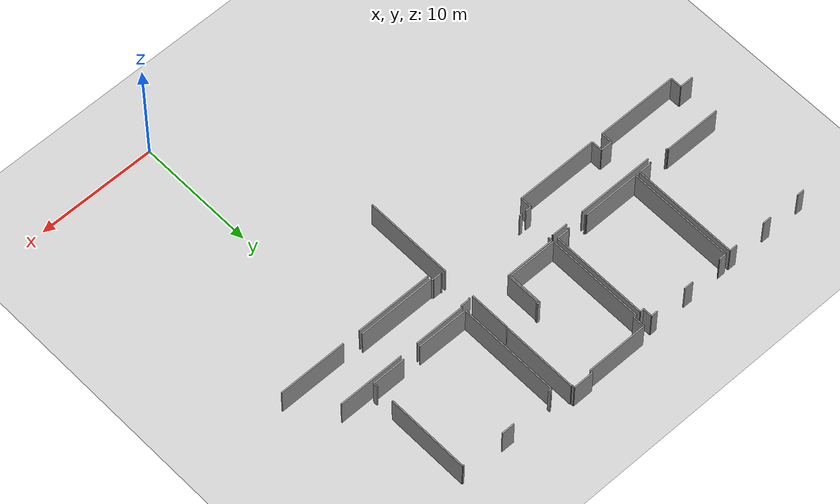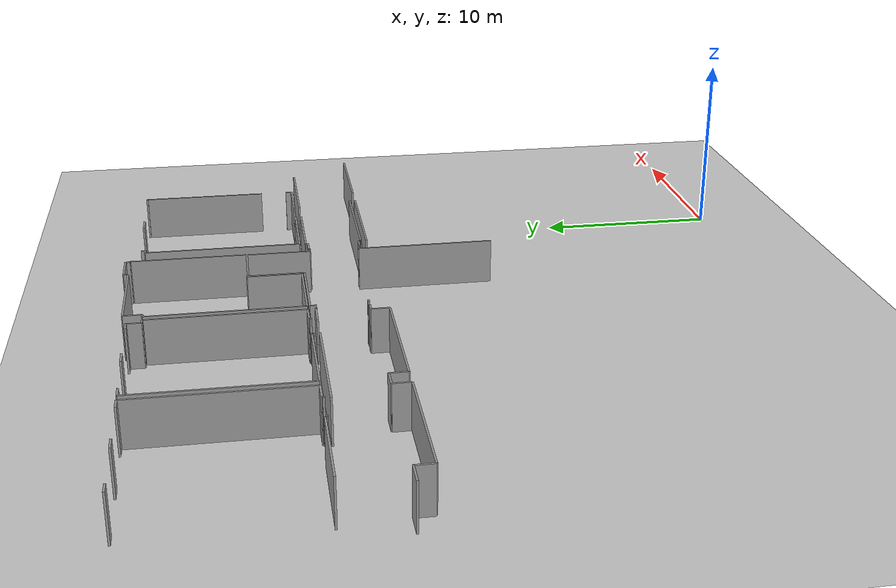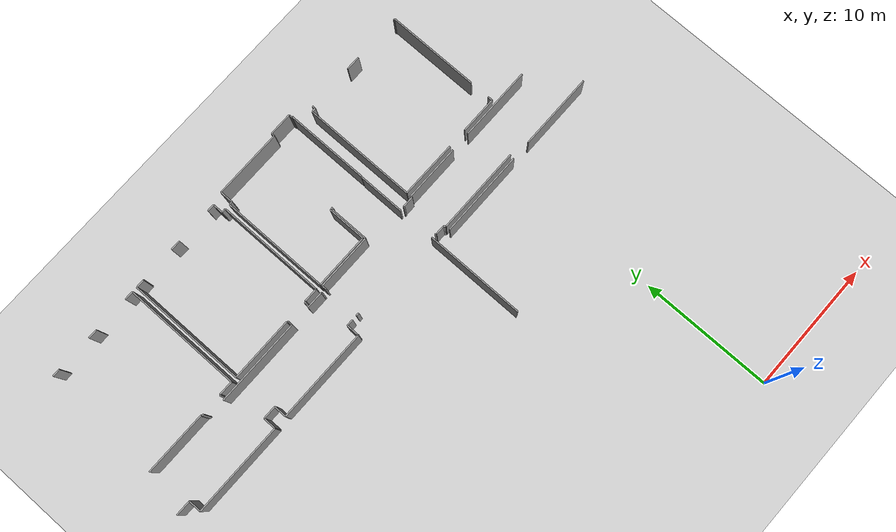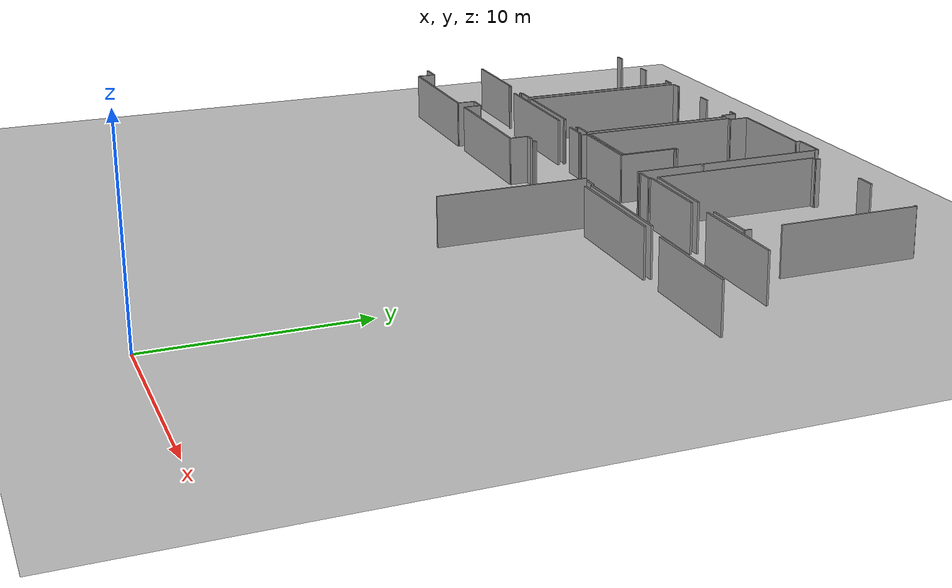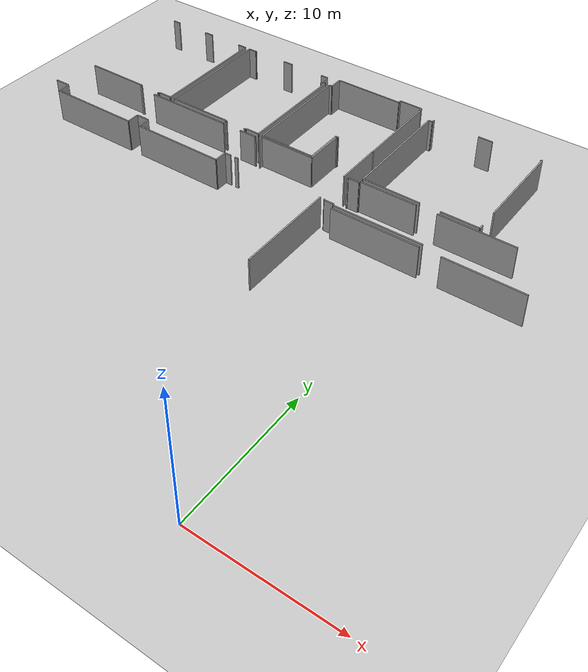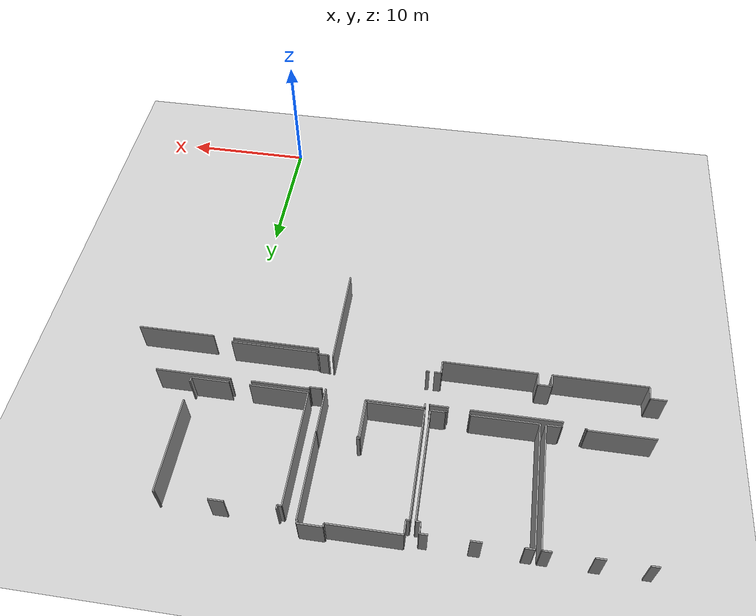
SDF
<sdf version="1.6">
 <world name="default">
  <model name="ground_plane">
   <static>1</static>
   <link name="link">
    <collision name="collision">
     <geometry><plane><normal>0 0 1</normal><size>100 100</size></plane></geometry>
     <surface><friction><ode><mu>100</mu><mu2>50</mu2></ode></friction></surface>
    </collision>
    <visual name="visual">
     <cast_shadows>0</cast_shadows>
     <geometry><plane><normal>0 0 1</normal><size>100 100</size></plane></geometry>
     <material>
      <script><uri>file://media/materials/scripts/gazebo.material</uri><name>Gazebo/Grey</name></script>
     </material>
    </visual>
   </link>
  </model>
  <model name="0510035739_A_40_1_102">
   <static>1</static>
   <link name="Wall_212">
    <collision name="Wall_212_Collision">
     <geometry><box><size>6.51525205273 0.1 2.5</size></box></geometry>
     <pose>3.25762602637 0 1.25 0 0 0</pose>
    </collision>
    <visual name="Wall_212_Visual">
     <pose>3.25762602637 0 1.25 0 0 0</pose>
     <geometry><box><size>6.51525205273 0.1 2.5</size></box></geometry>
     <material>
      <script><uri>file://media/materials/scripts/gazebo.material</uri><name>Gazebo/Grey</name></script>
      <ambient>1 1 1 1</ambient>
     </material>
    </visual>
    <pose>68.1760580152 -24.0087216448 0 0 0 0.0</pose>
   </link>
   <link name="Wall_213">
    <collision name="Wall_213_Collision">
     <geometry><box><size>1.33219048541 0.1 2.5</size></box></geometry>
     <pose>0.666095242704 0 1.25 0 0 0</pose>
    </collision>
    <visual name="Wall_213_Visual">
     <pose>0.666095242704 0 1.25 0 0 0</pose>
     <geometry><box><size>1.33219048541 0.1 2.5</size></box></geometry>
     <material>
      <script><uri>file://media/materials/scripts/gazebo.material</uri><name>Gazebo/Grey</name></script>
      <ambient>1 1 1 1</ambient>
     </material>
    </visual>
    <pose>76.1781161604 -24.0087216448 0 0 0 0.0</pose>
   </link>
   <link name="Wall_214">
    <collision name="Wall_214_Collision">
     <geometry><box><size>0.0649538381987 0.1 2.5</size></box></geometry>
     <pose>0.0324769190994 0 1.25 0 0 0</pose>
    </collision>
    <visual name="Wall_214_Visual">
     <pose>0.0324769190994 0 1.25 0 0 0</pose>
     <geometry><box><size>0.0649538381987 0.1 2.5</size></box></geometry>
     <material>
      <script><uri>file://media/materials/scripts/gazebo.material</uri><name>Gazebo/Grey</name></script>
      <ambient>1 1 1 1</ambient>
     </material>
    </visual>
    <pose>77.5103066458 -24.0087216448 0 0 0 -1.57079632679</pose>
   </link>
   <link name="Wall_215">
    <collision name="Wall_215_Collision">
     <geometry><box><size>0.5010360774 0.1 2.5</size></box></geometry>
     <pose>0.2505180387 0 1.25 0 0 0</pose>
    </collision>
    <visual name="Wall_215_Visual">
     <pose>0.2505180387 0 1.25 0 0 0</pose>
     <geometry><box><size>0.5010360774 0.1 2.5</size></box></geometry>
     <material>
      <script><uri>file://media/materials/scripts/gazebo.material</uri><name>Gazebo/Grey</name></script>
      <ambient>1 1 1 1</ambient>
     </material>
    </visual>
    <pose>77.5103066458 -26.7518113842 0 0 0 3.14159265359</pose>
   </link>
   <link name="Wall_216">
    <collision name="Wall_216_Collision">
     <geometry><box><size>0.971505642705 0.1 2.5</size></box></geometry>
     <pose>0.485752821353 0 1.25 0 0 0</pose>
    </collision>
    <visual name="Wall_216_Visual">
     <pose>0.485752821353 0 1.25 0 0 0</pose>
     <geometry><box><size>0.971505642705 0.1 2.5</size></box></geometry>
     <material>
      <script><uri>file://media/materials/scripts/gazebo.material</uri><name>Gazebo/Grey</name></script>
      <ambient>1 1 1 1</ambient>
     </material>
    </visual>
    <pose>77.0092705684 -26.7518113842 0 0 0 -1.57079632679</pose>
   </link>
   <link name="Wall_217">
    <collision name="Wall_217_Collision">
     <geometry><box><size>6.95057012913 0.1 2.5</size></box></geometry>
     <pose>3.47528506457 0 1.25 0 0 0</pose>
    </collision>
    <visual name="Wall_217_Visual">
     <pose>3.47528506457 0 1.25 0 0 0</pose>
     <geometry><box><size>6.95057012913 0.1 2.5</size></box></geometry>
     <material>
      <script><uri>file://media/materials/scripts/gazebo.material</uri><name>Gazebo/Grey</name></script>
      <ambient>1 1 1 1</ambient>
     </material>
    </visual>
    <pose>77.0092705684 -27.7233170269 0 0 0 3.14159265359</pose>
   </link>
   <link name="Wall_218">
    <collision name="Wall_218_Collision">
     <geometry><box><size>0.937882479403 0.1 2.5</size></box></geometry>
     <pose>0.468941239701 0 1.25 0 0 0</pose>
    </collision>
    <visual name="Wall_218_Visual">
     <pose>0.468941239701 0 1.25 0 0 0</pose>
     <geometry><box><size>0.937882479403 0.1 2.5</size></box></geometry>
     <material>
      <script><uri>file://media/materials/scripts/gazebo.material</uri><name>Gazebo/Grey</name></script>
      <ambient>1 1 1 1</ambient>
     </material>
    </visual>
    <pose>70.0587004393 -27.7233170269 0 0 0 1.57079632679</pose>
   </link>
   <link name="Wall_219">
    <collision name="Wall_219_Collision">
     <geometry><box><size>1.00487408507 0.1 2.5</size></box></geometry>
     <pose>0.502437042537 0 1.25 0 0 0</pose>
    </collision>
    <visual name="Wall_219_Visual">
     <pose>0.502437042537 0 1.25 0 0 0</pose>
     <geometry><box><size>1.00487408507 0.1 2.5</size></box></geometry>
     <material>
      <script><uri>file://media/materials/scripts/gazebo.material</uri><name>Gazebo/Grey</name></script>
      <ambient>1 1 1 1</ambient>
     </material>
    </visual>
    <pose>70.0587004393 -26.7854345475 0 0 0 3.14159265359</pose>
   </link>
   <link name="Wall_220">
    <collision name="Wall_220_Collision">
     <geometry><box><size>0.954694061054 0.1 2.5</size></box></geometry>
     <pose>0.477347030527 0 1.25 0 0 0</pose>
    </collision>
    <visual name="Wall_220_Visual">
     <pose>0.477347030527 0 1.25 0 0 0</pose>
     <geometry><box><size>0.954694061054 0.1 2.5</size></box></geometry>
     <material>
      <script><uri>file://media/materials/scripts/gazebo.material</uri><name>Gazebo/Grey</name></script>
      <ambient>1 1 1 1</ambient>
     </material>
    </visual>
    <pose>69.0538263542 -26.7854345475 0 0 0 -1.57079632679</pose>
   </link>
   <link name="Wall_221">
    <collision name="Wall_221_Collision">
     <geometry><box><size>6.91694696583 0.1 2.5</size></box></geometry>
     <pose>3.45847348291 0 1.25 0 0 0</pose>
    </collision>
    <visual name="Wall_221_Visual">
     <pose>3.45847348291 0 1.25 0 0 0</pose>
     <geometry><box><size>6.91694696583 0.1 2.5</size></box></geometry>
     <material>
      <script><uri>file://media/materials/scripts/gazebo.material</uri><name>Gazebo/Grey</name></script>
      <ambient>1 1 1 1</ambient>
     </material>
    </visual>
    <pose>69.0538263542 -27.7401286086 0 0 0 3.14159265359</pose>
   </link>
   <link name="Wall_222">
    <collision name="Wall_222_Collision">
     <geometry><box><size>0.954694061054 0.1 2.5</size></box></geometry>
     <pose>0.477347030527 0 1.25 0 0 0</pose>
    </collision>
    <visual name="Wall_222_Visual">
     <pose>0.477347030527 0 1.25 0 0 0</pose>
     <geometry><box><size>0.954694061054 0.1 2.5</size></box></geometry>
     <material>
      <script><uri>file://media/materials/scripts/gazebo.material</uri><name>Gazebo/Grey</name></script>
      <ambient>1 1 1 1</ambient>
     </material>
    </visual>
    <pose>62.1368793884 -27.7401286086 0 0 0 1.57079632679</pose>
   </link>
   <link name="Wall_223">
    <collision name="Wall_223_Collision">
     <geometry><box><size>1.15566887807 0.1 2.5</size></box></geometry>
     <pose>0.577834439034 0 1.25 0 0 0</pose>
    </collision>
    <visual name="Wall_223_Visual">
     <pose>0.577834439034 0 1.25 0 0 0</pose>
     <geometry><box><size>1.15566887807 0.1 2.5</size></box></geometry>
     <material>
      <script><uri>file://media/materials/scripts/gazebo.material</uri><name>Gazebo/Grey</name></script>
      <ambient>1 1 1 1</ambient>
     </material>
    </visual>
    <pose>62.1368793884 -26.7854345475 0 0 0 3.14159265359</pose>
   </link>
   <link name="Wall_349">
    <collision name="Wall_349_Collision">
     <geometry><box><size>0.593754497416 0.1 2.5</size></box></geometry>
     <pose>0.296877248708 0 1.25 0 0 0</pose>
    </collision>
    <visual name="Wall_349_Visual">
     <pose>0.296877248708 0 1.25 0 0 0</pose>
     <geometry><box><size>0.593754497416 0.1 2.5</size></box></geometry>
     <material>
      <script><uri>file://media/materials/scripts/gazebo.material</uri><name>Gazebo/Grey</name></script>
      <ambient>1 1 1 1</ambient>
     </material>
    </visual>
    <pose>62.041613759 -14.6709069211 0 0 0 0.0</pose>
   </link>
   <link name="Wall_350">
    <collision name="Wall_350_Collision">
     <geometry><box><size>0.711435568976 0.1 2.5</size></box></geometry>
     <pose>0.355717784488 0 1.25 0 0 0</pose>
    </collision>
    <visual name="Wall_350_Visual">
     <pose>0.355717784488 0 1.25 0 0 0</pose>
     <geometry><box><size>0.711435568976 0.1 2.5</size></box></geometry>
     <material>
      <script><uri>file://media/materials/scripts/gazebo.material</uri><name>Gazebo/Grey</name></script>
      <ambient>1 1 1 1</ambient>
     </material>
    </visual>
    <pose>65.3427970651 -14.6709069211 0 0 0 0.0</pose>
   </link>
   <link name="Wall_351">
    <collision name="Wall_351_Collision">
     <geometry><box><size>0.666604684573 0.1 2.5</size></box></geometry>
     <pose>0.333302342286 0 1.25 0 0 0</pose>
    </collision>
    <visual name="Wall_351_Visual">
     <pose>0.333302342286 0 1.25 0 0 0</pose>
     <geometry><box><size>0.666604684573 0.1 2.5</size></box></geometry>
     <material>
      <script><uri>file://media/materials/scripts/gazebo.material</uri><name>Gazebo/Grey</name></script>
      <ambient>1 1 1 1</ambient>
     </material>
    </visual>
    <pose>68.7155569537 -14.6709069211 0 0 0 0.0</pose>
   </link>
   <link name="Wall_352">
    <collision name="Wall_352_Collision">
     <geometry><box><size>8.93128011279 0.1 2.5</size></box></geometry>
     <pose>4.4656400564 0 1.25 0 0 0</pose>
    </collision>
    <visual name="Wall_352_Visual">
     <pose>4.4656400564 0 1.25 0 0 0</pose>
     <geometry><box><size>8.93128011279 0.1 2.5</size></box></geometry>
     <material>
      <script><uri>file://media/materials/scripts/gazebo.material</uri><name>Gazebo/Grey</name></script>
      <ambient>1 1 1 1</ambient>
     </material>
    </visual>
    <pose>69.3821616383 -14.6709069211 0 0 0 -1.57079632679</pose>
   </link>
   <link name="Wall_353">
    <collision name="Wall_353_Collision">
     <geometry><box><size>1.06091269058 0.1 2.5</size></box></geometry>
     <pose>0.53045634529 0 1.25 0 0 0</pose>
    </collision>
    <visual name="Wall_353_Visual">
     <pose>0.53045634529 0 1.25 0 0 0</pose>
     <geometry><box><size>1.06091269058 0.1 2.5</size></box></geometry>
     <material>
      <script><uri>file://media/materials/scripts/gazebo.material</uri><name>Gazebo/Grey</name></script>
      <ambient>1 1 1 1</ambient>
     </material>
    </visual>
    <pose>69.3821616383 -23.6021870339 0 0 0 3.14159265359</pose>
   </link>
   <link name="Wall_354">
    <collision name="Wall_354_Collision">
     <geometry><box><size>0.0797276523773 0.1 2.5</size></box></geometry>
     <pose>0.0398638261886 0 1.25 0 0 0</pose>
    </collision>
    <visual name="Wall_354_Visual">
     <pose>0.0398638261886 0 1.25 0 0 0</pose>
     <geometry><box><size>0.0797276523773 0.1 2.5</size></box></geometry>
     <material>
      <script><uri>file://media/materials/scripts/gazebo.material</uri><name>Gazebo/Grey</name></script>
      <ambient>1 1 1 1</ambient>
     </material>
    </visual>
    <pose>68.3212489477 -23.6021870339 0 0 0 -1.57079632679</pose>
   </link>
   <link name="Wall_355">
    <collision name="Wall_355_Collision">
     <geometry><box><size>0.101378931777 0.1 2.5</size></box></geometry>
     <pose>0.0506894658884 0 1.25 0 0 0</pose>
    </collision>
    <visual name="Wall_355_Visual">
     <pose>0.0506894658884 0 1.25 0 0 0</pose>
     <geometry><box><size>0.101378931777 0.1 2.5</size></box></geometry>
     <material>
      <script><uri>file://media/materials/scripts/gazebo.material</uri><name>Gazebo/Grey</name></script>
      <ambient>1 1 1 1</ambient>
     </material>
    </visual>
    <pose>68.3212489477 -23.6819146863 0 0 0 3.14159265359</pose>
   </link>
   <link name="Wall_356">
    <collision name="Wall_356_Collision">
     <geometry><box><size>0.143407885905 0.1 2.5</size></box></geometry>
     <pose>0.0717039429527 0 1.25 0 0 0</pose>
    </collision>
    <visual name="Wall_356_Visual">
     <pose>0.0717039429527 0 1.25 0 0 0</pose>
     <geometry><box><size>0.143407885905 0.1 2.5</size></box></geometry>
     <material>
      <script><uri>file://media/materials/scripts/gazebo.material</uri><name>Gazebo/Grey</name></script>
      <ambient>1 1 1 1</ambient>
     </material>
    </visual>
    <pose>66.6953652252 -23.6819146863 0 0 0 3.14159265359</pose>
   </link>
   <link name="Wall_357">
    <collision name="Wall_357_Collision">
     <geometry><box><size>0.0766710011679 0.1 2.5</size></box></geometry>
     <pose>0.038335500584 0 1.25 0 0 0</pose>
    </collision>
    <visual name="Wall_357_Visual">
     <pose>0.038335500584 0 1.25 0 0 0</pose>
     <geometry><box><size>0.0766710011679 0.1 2.5</size></box></geometry>
     <material>
      <script><uri>file://media/materials/scripts/gazebo.material</uri><name>Gazebo/Grey</name></script>
      <ambient>1 1 1 1</ambient>
     </material>
    </visual>
    <pose>66.5519573393 -23.6819146863 0 0 0 1.57079632679</pose>
   </link>
   <link name="Wall_358">
    <collision name="Wall_358_Collision">
     <geometry><box><size>4.77933312916 0.1 2.5</size></box></geometry>
     <pose>2.38966656458 0 1.25 0 0 0</pose>
    </collision>
    <visual name="Wall_358_Visual">
     <pose>2.38966656458 0 1.25 0 0 0</pose>
     <geometry><box><size>4.77933312916 0.1 2.5</size></box></geometry>
     <material>
      <script><uri>file://media/materials/scripts/gazebo.material</uri><name>Gazebo/Grey</name></script>
      <ambient>1 1 1 1</ambient>
     </material>
    </visual>
    <pose>66.5519573393 -23.6052436851 0 0 0 3.14026024485</pose>
   </link>
   <link name="Wall_359">
    <collision name="Wall_359_Collision">
     <geometry><box><size>8.94962002005 0.1 2.5</size></box></geometry>
     <pose>4.47481001002 0 1.25 0 0 0</pose>
    </collision>
    <visual name="Wall_359_Visual">
     <pose>4.47481001002 0 1.25 0 0 0</pose>
     <geometry><box><size>8.94962002005 0.1 2.5</size></box></geometry>
     <material>
      <script><uri>file://media/materials/scripts/gazebo.material</uri><name>Gazebo/Grey</name></script>
      <ambient>1 1 1 1</ambient>
     </material>
    </visual>
    <pose>69.7861490398 -23.6238383133 0 0 0 1.57079632679</pose>
   </link>
   <link name="Wall_360">
    <collision name="Wall_360_Collision">
     <geometry><box><size>0.634764567809 0.1 2.5</size></box></geometry>
     <pose>0.317382283904 0 1.25 0 0 0</pose>
    </collision>
    <visual name="Wall_360_Visual">
     <pose>0.317382283904 0 1.25 0 0 0</pose>
     <geometry><box><size>0.634764567809 0.1 2.5</size></box></geometry>
     <material>
      <script><uri>file://media/materials/scripts/gazebo.material</uri><name>Gazebo/Grey</name></script>
      <ambient>1 1 1 1</ambient>
     </material>
    </visual>
    <pose>69.7861490398 -14.6742182933 0 0 0 0.0</pose>
   </link>
   <link name="Wall_361">
    <collision name="Wall_361_Collision">
     <geometry><box><size>0.0433025587991 0.1 2.5</size></box></geometry>
     <pose>0.0216512793996 0 1.25 0 0 0</pose>
    </collision>
    <visual name="Wall_361_Visual">
     <pose>0.0216512793996 0 1.25 0 0 0</pose>
     <geometry><box><size>0.0433025587991 0.1 2.5</size></box></geometry>
     <material>
      <script><uri>file://media/materials/scripts/gazebo.material</uri><name>Gazebo/Grey</name></script>
      <ambient>1 1 1 1</ambient>
     </material>
    </visual>
    <pose>70.4209136076 -14.6742182933 0 0 0 1.57079632679</pose>
   </link>
   <link name="Wall_362">
    <collision name="Wall_362_Collision">
     <geometry><box><size>0.781993267726 0.1 2.5</size></box></geometry>
     <pose>0.390996633863 0 1.25 0 0 0</pose>
    </collision>
    <visual name="Wall_362_Visual">
     <pose>0.390996633863 0 1.25 0 0 0</pose>
     <geometry><box><size>0.781993267726 0.1 2.5</size></box></geometry>
     <material>
      <script><uri>file://media/materials/scripts/gazebo.material</uri><name>Gazebo/Grey</name></script>
      <ambient>1 1 1 1</ambient>
     </material>
    </visual>
    <pose>73.0929362064 -14.6309157345 0 0 0 0.0</pose>
   </link>
   <link name="Wall_363">
    <collision name="Wall_363_Collision">
     <geometry><box><size>0.557074682904 0.1 2.5</size></box></geometry>
     <pose>0.278537341452 0 1.25 0 0 0</pose>
    </collision>
    <visual name="Wall_363_Visual">
     <pose>0.278537341452 0 1.25 0 0 0</pose>
     <geometry><box><size>0.557074682904 0.1 2.5</size></box></geometry>
     <material>
      <script><uri>file://media/materials/scripts/gazebo.material</uri><name>Gazebo/Grey</name></script>
      <ambient>1 1 1 1</ambient>
     </material>
    </visual>
    <pose>76.5675844686 -14.6309157345 0 0 0 0.0</pose>
   </link>
   <link name="Wall_364">
    <collision name="Wall_364_Collision">
     <geometry><box><size>0.774351639702 0.1 2.5</size></box></geometry>
     <pose>0.387175819851 0 1.25 0 0 0</pose>
    </collision>
    <visual name="Wall_364_Visual">
     <pose>0.387175819851 0 1.25 0 0 0</pose>
     <geometry><box><size>0.774351639702 0.1 2.5</size></box></geometry>
     <material>
      <script><uri>file://media/materials/scripts/gazebo.material</uri><name>Gazebo/Grey</name></script>
      <ambient>1 1 1 1</ambient>
     </material>
    </visual>
    <pose>77.1246591516 -14.6309157345 0 0 0 -1.57079632679</pose>
   </link>
   <link name="Wall_365">
    <collision name="Wall_365_Collision">
     <geometry><box><size>0.319165330443 0.1 2.5</size></box></geometry>
     <pose>0.159582665222 0 1.25 0 0 0</pose>
    </collision>
    <visual name="Wall_365_Visual">
     <pose>0.159582665222 0 1.25 0 0 0</pose>
     <geometry><box><size>0.319165330443 0.1 2.5</size></box></geometry>
     <material>
      <script><uri>file://media/materials/scripts/gazebo.material</uri><name>Gazebo/Grey</name></script>
      <ambient>1 1 1 1</ambient>
     </material>
    </visual>
    <pose>77.1246591516 -15.4052673742 0 0 0 0.0</pose>
   </link>
   <link name="Wall_366">
    <collision name="Wall_366_Collision">
     <geometry><box><size>8.1936082876 0.1 2.5</size></box></geometry>
     <pose>4.0968041438 0 1.25 0 0 0</pose>
    </collision>
    <visual name="Wall_366_Visual">
     <pose>4.0968041438 0 1.25 0 0 0</pose>
     <geometry><box><size>8.1936082876 0.1 2.5</size></box></geometry>
     <material>
      <script><uri>file://media/materials/scripts/gazebo.material</uri><name>Gazebo/Grey</name></script>
      <ambient>1 1 1 1</ambient>
     </material>
    </visual>
    <pose>77.443824482 -15.4052673742 0 0 0 -1.57079632679</pose>
   </link>
   <link name="Wall_367">
    <collision name="Wall_367_Collision">
     <geometry><box><size>1.06575238833 0.1 2.5</size></box></geometry>
     <pose>0.532876194164 0 1.25 0 0 0</pose>
    </collision>
    <visual name="Wall_367_Visual">
     <pose>0.532876194164 0 1.25 0 0 0</pose>
     <geometry><box><size>1.06575238833 0.1 2.5</size></box></geometry>
     <material>
      <script><uri>file://media/materials/scripts/gazebo.material</uri><name>Gazebo/Grey</name></script>
      <ambient>1 1 1 1</ambient>
     </material>
    </visual>
    <pose>77.443824482 -23.5988756618 0 0 0 3.14159265359</pose>
   </link>
   <link name="Wall_368">
    <collision name="Wall_368_Collision">
     <geometry><box><size>0.0748879546291 0.1 2.5</size></box></geometry>
     <pose>0.0374439773146 0 1.25 0 0 0</pose>
    </collision>
    <visual name="Wall_368_Visual">
     <pose>0.0374439773146 0 1.25 0 0 0</pose>
     <geometry><box><size>0.0748879546291 0.1 2.5</size></box></geometry>
     <material>
      <script><uri>file://media/materials/scripts/gazebo.material</uri><name>Gazebo/Grey</name></script>
      <ambient>1 1 1 1</ambient>
     </material>
    </visual>
    <pose>76.3780720937 -23.5988756618 0 0 0 -1.57079632679</pose>
   </link>
   <link name="Wall_369">
    <collision name="Wall_369_Collision">
     <geometry><box><size>0.133219048541 0.1 2.5</size></box></geometry>
     <pose>0.0666095242704 0 1.25 0 0 0</pose>
    </collision>
    <visual name="Wall_369_Visual">
     <pose>0.0666095242704 0 1.25 0 0 0</pose>
     <geometry><box><size>0.133219048541 0.1 2.5</size></box></geometry>
     <material>
      <script><uri>file://media/materials/scripts/gazebo.material</uri><name>Gazebo/Grey</name></script>
      <ambient>1 1 1 1</ambient>
     </material>
    </visual>
    <pose>76.3780720937 -23.6737636164 0 0 0 3.14159265359</pose>
   </link>
   <link name="Wall_370">
    <collision name="Wall_370_Collision">
     <geometry><box><size>0.109530001668 0.1 2.5</size></box></geometry>
     <pose>0.0547650008342 0 1.25 0 0 0</pose>
    </collision>
    <visual name="Wall_370_Visual">
     <pose>0.0547650008342 0 1.25 0 0 0</pose>
     <geometry><box><size>0.109530001668 0.1 2.5</size></box></geometry>
     <material>
      <script><uri>file://media/materials/scripts/gazebo.material</uri><name>Gazebo/Grey</name></script>
      <ambient>1 1 1 1</ambient>
     </material>
    </visual>
    <pose>74.7129613474 -23.6737636164 0 0 0 3.14159265359</pose>
   </link>
   <link name="Wall_371">
    <collision name="Wall_371_Collision">
     <geometry><box><size>0.0613877451211 0.1 2.5</size></box></geometry>
     <pose>0.0306938725606 0 1.25 0 0 0</pose>
    </collision>
    <visual name="Wall_371_Visual">
     <pose>0.0306938725606 0 1.25 0 0 0</pose>
     <geometry><box><size>0.0613877451211 0.1 2.5</size></box></geometry>
     <material>
      <script><uri>file://media/materials/scripts/gazebo.material</uri><name>Gazebo/Grey</name></script>
      <ambient>1 1 1 1</ambient>
     </material>
    </visual>
    <pose>74.6034313457 -23.6737636164 0 0 0 1.57079632679</pose>
   </link>
   <link name="Wall_372">
    <collision name="Wall_372_Collision">
     <geometry><box><size>4.81729594302 0.1 2.5</size></box></geometry>
     <pose>2.40864797151 0 1.25 0 0 0</pose>
    </collision>
    <visual name="Wall_372_Visual">
     <pose>2.40864797151 0 1.25 0 0 0</pose>
     <geometry><box><size>4.81729594302 0.1 2.5</size></box></geometry>
     <material>
      <script><uri>file://media/materials/scripts/gazebo.material</uri><name>Gazebo/Grey</name></script>
      <ambient>1 1 1 1</ambient>
     </material>
    </visual>
    <pose>74.6034313457 -23.6123758713 0 0 0 -3.13921321646</pose>
   </link>
   <link name="Wall_373">
    <collision name="Wall_373_Collision">
     <geometry><box><size>8.1936082876 0.1 2.5</size></box></geometry>
     <pose>4.0968041438 0 1.25 0 0 0</pose>
    </collision>
    <visual name="Wall_373_Visual">
     <pose>4.0968041438 0 1.25 0 0 0</pose>
     <geometry><box><size>8.1936082876 0.1 2.5</size></box></geometry>
     <material>
      <script><uri>file://media/materials/scripts/gazebo.material</uri><name>Gazebo/Grey</name></script>
      <ambient>1 1 1 1</ambient>
     </material>
    </visual>
    <pose>77.8338022321 -23.6034606386 0 0 0 1.57079632679</pose>
   </link>
   <link name="Wall_374">
    <collision name="Wall_374_Collision">
     <geometry><box><size>0.240711282736 0.1 2.5</size></box></geometry>
     <pose>0.120355641368 0 1.25 0 0 0</pose>
    </collision>
    <visual name="Wall_374_Visual">
     <pose>0.120355641368 0 1.25 0 0 0</pose>
     <geometry><box><size>0.240711282736 0.1 2.5</size></box></geometry>
     <material>
      <script><uri>file://media/materials/scripts/gazebo.material</uri><name>Gazebo/Grey</name></script>
      <ambient>1 1 1 1</ambient>
     </material>
    </visual>
    <pose>77.8338022321 -15.409852351 0 0 0 0.0</pose>
   </link>
   <link name="Wall_375">
    <collision name="Wall_375_Collision">
     <geometry><box><size>1.00054382919 0.1 2.5</size></box></geometry>
     <pose>0.500271914597 0 1.25 0 0 0</pose>
    </collision>
    <visual name="Wall_375_Visual">
     <pose>0.500271914597 0 1.25 0 0 0</pose>
     <geometry><box><size>1.00054382919 0.1 2.5</size></box></geometry>
     <material>
      <script><uri>file://media/materials/scripts/gazebo.material</uri><name>Gazebo/Grey</name></script>
      <ambient>1 1 1 1</ambient>
     </material>
    </visual>
    <pose>78.0745135149 -15.409852351 0 0 0 1.57079632679</pose>
   </link>
   <link name="Wall_376">
    <collision name="Wall_376_Collision">
     <geometry><box><size>5.17949547425 0.1 2.5</size></box></geometry>
     <pose>2.58974773712 0 1.25 0 0 0</pose>
    </collision>
    <visual name="Wall_376_Visual">
     <pose>2.58974773712 0 1.25 0 0 0</pose>
     <geometry><box><size>5.17949547425 0.1 2.5</size></box></geometry>
     <material>
      <script><uri>file://media/materials/scripts/gazebo.material</uri><name>Gazebo/Grey</name></script>
      <ambient>1 1 1 1</ambient>
     </material>
    </visual>
    <pose>78.0745135149 -14.4093085218 0 0 0 0.0</pose>
   </link>
   <link name="Wall_377">
    <collision name="Wall_377_Collision">
     <geometry><box><size>0.240711282736 0.1 2.5</size></box></geometry>
     <pose>0.120355641368 0 1.25 0 0 0</pose>
    </collision>
    <visual name="Wall_377_Visual">
     <pose>0.120355641368 0 1.25 0 0 0</pose>
     <geometry><box><size>0.240711282736 0.1 2.5</size></box></geometry>
     <material>
      <script><uri>file://media/materials/scripts/gazebo.material</uri><name>Gazebo/Grey</name></script>
      <ambient>1 1 1 1</ambient>
     </material>
    </visual>
    <pose>83.2540089891 -14.4093085218 0 0 0 1.57079632679</pose>
   </link>
   <link name="Wall_378">
    <collision name="Wall_378_Collision">
     <geometry><box><size>1.73515900318 0.1 2.5</size></box></geometry>
     <pose>0.867579501588 0 1.25 0 0 0</pose>
    </collision>
    <visual name="Wall_378_Visual">
     <pose>0.867579501588 0 1.25 0 0 0</pose>
     <geometry><box><size>1.73515900318 0.1 2.5</size></box></geometry>
     <material>
      <script><uri>file://media/materials/scripts/gazebo.material</uri><name>Gazebo/Grey</name></script>
      <ambient>1 1 1 1</ambient>
     </material>
    </visual>
    <pose>83.2540089891 -14.1685972391 0 0 0 0.0</pose>
   </link>
   <link name="Wall_379">
    <collision name="Wall_379_Collision">
     <geometry><box><size>0.240711282736 0.1 2.5</size></box></geometry>
     <pose>0.120355641368 0 1.25 0 0 0</pose>
    </collision>
    <visual name="Wall_379_Visual">
     <pose>0.120355641368 0 1.25 0 0 0</pose>
     <geometry><box><size>0.240711282736 0.1 2.5</size></box></geometry>
     <material>
      <script><uri>file://media/materials/scripts/gazebo.material</uri><name>Gazebo/Grey</name></script>
      <ambient>1 1 1 1</ambient>
     </material>
    </visual>
    <pose>84.9891679923 -14.1685972391 0 0 0 -1.57079632679</pose>
   </link>
   <link name="Wall_380">
    <collision name="Wall_380_Collision">
     <geometry><box><size>0.0547650008342 0.1 2.5</size></box></geometry>
     <pose>0.0273825004171 0 1.25 0 0 0</pose>
    </collision>
    <visual name="Wall_380_Visual">
     <pose>0.0273825004171 0 1.25 0 0 0</pose>
     <geometry><box><size>0.0547650008342 0.1 2.5</size></box></geometry>
     <material>
      <script><uri>file://media/materials/scripts/gazebo.material</uri><name>Gazebo/Grey</name></script>
      <ambient>1 1 1 1</ambient>
     </material>
    </visual>
    <pose>84.9891679923 -14.4093085218 0 0 0 0.0</pose>
   </link>
   <link name="Wall_381">
    <collision name="Wall_381_Collision">
     <geometry><box><size>6.28523904923 0.1 2.5</size></box></geometry>
     <pose>3.14261952461 0 1.25 0 0 0</pose>
    </collision>
    <visual name="Wall_381_Visual">
     <pose>3.14261952461 0 1.25 0 0 0</pose>
     <geometry><box><size>6.28523904923 0.1 2.5</size></box></geometry>
     <material>
      <script><uri>file://media/materials/scripts/gazebo.material</uri><name>Gazebo/Grey</name></script>
      <ambient>1 1 1 1</ambient>
     </material>
    </visual>
    <pose>85.0439329931 -14.4093085218 0 0 0 -1.57079632679</pose>
   </link>
   <link name="Wall_382">
    <collision name="Wall_382_Collision">
     <geometry><box><size>0.217786398666 0.1 2.5</size></box></geometry>
     <pose>0.108893199333 0 1.25 0 0 0</pose>
    </collision>
    <visual name="Wall_382_Visual">
     <pose>0.108893199333 0 1.25 0 0 0</pose>
     <geometry><box><size>0.217786398666 0.1 2.5</size></box></geometry>
     <material>
      <script><uri>file://media/materials/scripts/gazebo.material</uri><name>Gazebo/Grey</name></script>
      <ambient>1 1 1 1</ambient>
     </material>
    </visual>
    <pose>82.2017568103 -20.694547571 0 0 0 3.14159265359</pose>
   </link>
   <link name="Wall_383">
    <collision name="Wall_383_Collision">
     <geometry><box><size>2.91477164905 0.1 2.5</size></box></geometry>
     <pose>1.45738582453 0 1.25 0 0 0</pose>
    </collision>
    <visual name="Wall_383_Visual">
     <pose>1.45738582453 0 1.25 0 0 0</pose>
     <geometry><box><size>2.91477164905 0.1 2.5</size></box></geometry>
     <material>
      <script><uri>file://media/materials/scripts/gazebo.material</uri><name>Gazebo/Grey</name></script>
      <ambient>1 1 1 1</ambient>
     </material>
    </visual>
    <pose>81.9839704116 -20.694547571 0 0 0 -1.57079632679</pose>
   </link>
   <link name="Wall_384">
    <collision name="Wall_384_Collision">
     <geometry><box><size>4.15017231463 0.1 2.5</size></box></geometry>
     <pose>2.07508615731 0 1.25 0 0 0</pose>
    </collision>
    <visual name="Wall_384_Visual">
     <pose>2.07508615731 0 1.25 0 0 0</pose>
     <geometry><box><size>4.15017231463 0.1 2.5</size></box></geometry>
     <material>
      <script><uri>file://media/materials/scripts/gazebo.material</uri><name>Gazebo/Grey</name></script>
      <ambient>1 1 1 1</ambient>
     </material>
    </visual>
    <pose>81.9839704116 -23.6093192201 0 0 0 3.14018100535</pose>
   </link>
   <link name="Wall_426">
    <collision name="Wall_426_Collision">
     <geometry><box><size>0.251154841035 0.1 2.5</size></box></geometry>
     <pose>0.125577420518 0 1.25 0 0 0</pose>
    </collision>
    <visual name="Wall_426_Visual">
     <pose>0.125577420518 0 1.25 0 0 0</pose>
     <geometry><box><size>0.251154841035 0.1 2.5</size></box></geometry>
     <material>
      <script><uri>file://media/materials/scripts/gazebo.material</uri><name>Gazebo/Grey</name></script>
      <ambient>1 1 1 1</ambient>
     </material>
    </visual>
    <pose>78.1147594224 -26.7518113842 0 0 0 3.14159265359</pose>
   </link>
   <link name="Wall_427">
    <collision name="Wall_427_Collision">
     <geometry><box><size>0.341835493579 0.1 2.5</size></box></geometry>
     <pose>0.17091774679 0 1.25 0 0 0</pose>
    </collision>
    <visual name="Wall_427_Visual">
     <pose>0.17091774679 0 1.25 0 0 0</pose>
     <geometry><box><size>0.341835493579 0.1 2.5</size></box></geometry>
     <material>
      <script><uri>file://media/materials/scripts/gazebo.material</uri><name>Gazebo/Grey</name></script>
      <ambient>1 1 1 1</ambient>
     </material>
    </visual>
    <pose>77.8636045814 -24.0846284831 0 0 0 1.57079632679</pose>
   </link>
   <link name="Wall_428">
    <collision name="Wall_428_Collision">
     <geometry><box><size>4.21282952929 0.1 2.5</size></box></geometry>
     <pose>2.10641476464 0 1.25 0 0 0</pose>
    </collision>
    <visual name="Wall_428_Visual">
     <pose>2.10641476464 0 1.25 0 0 0</pose>
     <geometry><box><size>4.21282952929 0.1 2.5</size></box></geometry>
     <material>
      <script><uri>file://media/materials/scripts/gazebo.material</uri><name>Gazebo/Grey</name></script>
      <ambient>1 1 1 1</ambient>
     </material>
    </visual>
    <pose>77.8636045814 -23.7427929896 0 0 0 0.0</pose>
   </link>
   <link name="Wall_429">
    <collision name="Wall_429_Collision">
     <geometry><box><size>2.93820597499 0.1 2.5</size></box></geometry>
     <pose>1.46910298749 0 1.25 0 0 0</pose>
    </collision>
    <visual name="Wall_429_Visual">
     <pose>1.46910298749 0 1.25 0 0 0</pose>
     <geometry><box><size>2.93820597499 0.1 2.5</size></box></geometry>
     <material>
      <script><uri>file://media/materials/scripts/gazebo.material</uri><name>Gazebo/Grey</name></script>
      <ambient>1 1 1 1</ambient>
     </material>
    </visual>
    <pose>82.0764341107 -23.7427929896 0 0 0 1.57079632679</pose>
   </link>
   <link name="Wall_430">
    <collision name="Wall_430_Collision">
     <geometry><box><size>0.120483001835 0.1 2.5</size></box></geometry>
     <pose>0.0602415009176 0 1.25 0 0 0</pose>
    </collision>
    <visual name="Wall_430_Visual">
     <pose>0.0602415009176 0 1.25 0 0 0</pose>
     <geometry><box><size>0.120483001835 0.1 2.5</size></box></geometry>
     <material>
      <script><uri>file://media/materials/scripts/gazebo.material</uri><name>Gazebo/Grey</name></script>
      <ambient>1 1 1 1</ambient>
     </material>
    </visual>
    <pose>82.0764341107 -20.8045870146 0 0 0 0.0</pose>
   </link>
   <link name="Wall_431">
    <collision name="Wall_431_Collision">
     <geometry><box><size>3.43007209876 0.1 2.5</size></box></geometry>
     <pose>1.71503604938 0 1.25 0 0 0</pose>
    </collision>
    <visual name="Wall_431_Visual">
     <pose>1.71503604938 0 1.25 0 0 0</pose>
     <geometry><box><size>3.43007209876 0.1 2.5</size></box></geometry>
     <material>
      <script><uri>file://media/materials/scripts/gazebo.material</uri><name>Gazebo/Grey</name></script>
      <ambient>1 1 1 1</ambient>
     </material>
    </visual>
    <pose>85.02126283 -20.8045870146 0 0 0 -1.57079632679</pose>
   </link>
   <link name="Wall_432">
    <collision name="Wall_432_Collision">
     <geometry><box><size>7.53566411479 0.1 2.5</size></box></geometry>
     <pose>3.76783205739 0 1.25 0 0 0</pose>
    </collision>
    <visual name="Wall_432_Visual">
     <pose>3.76783205739 0 1.25 0 0 0</pose>
     <geometry><box><size>7.53566411479 0.1 2.5</size></box></geometry>
     <material>
      <script><uri>file://media/materials/scripts/gazebo.material</uri><name>Gazebo/Grey</name></script>
      <ambient>1 1 1 1</ambient>
     </material>
    </visual>
    <pose>85.02126283 -26.9716355504 0 0 0 -1.57079632679</pose>
   </link>
   <link name="Wall_442">
    <collision name="Wall_442_Collision">
     <geometry><box><size>0.0433025587991 0.1 2.5</size></box></geometry>
     <pose>0.0216512793996 0 1.25 0 0 0</pose>
    </collision>
    <visual name="Wall_442_Visual">
     <pose>0.0216512793996 0 1.25 0 0 0</pose>
     <geometry><box><size>0.0433025587991 0.1 2.5</size></box></geometry>
     <material>
      <script><uri>file://media/materials/scripts/gazebo.material</uri><name>Gazebo/Grey</name></script>
      <ambient>1 1 1 1</ambient>
     </material>
    </visual>
    <pose>86.1914508013 -27.2080165772 0 0 0 1.57079632679</pose>
   </link>
   <link name="Wall_443">
    <collision name="Wall_443_Collision">
     <geometry><box><size>0.143918229438 0.1 2.5</size></box></geometry>
     <pose>0.0719591147189 0 1.25 0 0 0</pose>
    </collision>
    <visual name="Wall_443_Visual">
     <pose>0.0719591147189 0 1.25 0 0 0</pose>
     <geometry><box><size>0.143918229438 0.1 2.5</size></box></geometry>
     <material>
      <script><uri>file://media/materials/scripts/gazebo.material</uri><name>Gazebo/Grey</name></script>
      <ambient>1 1 1 1</ambient>
     </material>
    </visual>
    <pose>86.1914508013 -27.1647140184 0 0 0 2.42759112127</pose>
   </link>
   <link name="Wall_444">
    <collision name="Wall_444_Collision">
     <geometry><box><size>0.687746522104 0.1 2.5</size></box></geometry>
     <pose>0.343873261052 0 1.25 0 0 0</pose>
    </collision>
    <visual name="Wall_444_Visual">
     <pose>0.343873261052 0 1.25 0 0 0</pose>
     <geometry><box><size>0.687746522104 0.1 2.5</size></box></geometry>
     <material>
      <script><uri>file://media/materials/scripts/gazebo.material</uri><name>Gazebo/Grey</name></script>
      <ambient>1 1 1 1</ambient>
     </material>
    </visual>
    <pose>86.0826849624 -27.0704672728 0 0 0 3.14159265359</pose>
   </link>
   <link name="Wall_445">
    <collision name="Wall_445_Collision">
     <geometry><box><size>0.108613018253 0.1 2.5</size></box></geometry>
     <pose>0.0543065091266 0 1.25 0 0 0</pose>
    </collision>
    <visual name="Wall_445_Visual">
     <pose>0.0543065091266 0 1.25 0 0 0</pose>
     <geometry><box><size>0.108613018253 0.1 2.5</size></box></geometry>
     <material>
      <script><uri>file://media/materials/scripts/gazebo.material</uri><name>Gazebo/Grey</name></script>
      <ambient>1 1 1 1</ambient>
     </material>
    </visual>
    <pose>85.3949384403 -27.0704672728 0 0 0 2.21476647871</pose>
   </link>
   <link name="Wall_446">
    <collision name="Wall_446_Collision">
     <geometry><box><size>0.101378931777 0.1 2.5</size></box></geometry>
     <pose>0.0506894658884 0 1.25 0 0 0</pose>
    </collision>
    <visual name="Wall_446_Visual">
     <pose>0.0506894658884 0 1.25 0 0 0</pose>
     <geometry><box><size>0.101378931777 0.1 2.5</size></box></geometry>
     <material>
      <script><uri>file://media/materials/scripts/gazebo.material</uri><name>Gazebo/Grey</name></script>
      <ambient>1 1 1 1</ambient>
     </material>
    </visual>
    <pose>85.3297298812 -24.3044526493 0 0 0 1.57079632679</pose>
   </link>
   <link name="Wall_447">
    <collision name="Wall_447_Collision">
     <geometry><box><size>0.847201826859 0.1 2.5</size></box></geometry>
     <pose>0.423600913429 0 1.25 0 0 0</pose>
    </collision>
    <visual name="Wall_447_Visual">
     <pose>0.423600913429 0 1.25 0 0 0</pose>
     <geometry><box><size>0.847201826859 0.1 2.5</size></box></geometry>
     <material>
      <script><uri>file://media/materials/scripts/gazebo.material</uri><name>Gazebo/Grey</name></script>
      <ambient>1 1 1 1</ambient>
     </material>
    </visual>
    <pose>85.3297298812 -24.2030737175 0 0 0 0.0</pose>
   </link>
   <link name="Wall_448">
    <collision name="Wall_448_Collision">
     <geometry><box><size>0.123030211176 0.1 2.5</size></box></geometry>
     <pose>0.0615151055882 0 1.25 0 0 0</pose>
    </collision>
    <visual name="Wall_448_Visual">
     <pose>0.0615151055882 0 1.25 0 0 0</pose>
     <geometry><box><size>0.123030211176 0.1 2.5</size></box></geometry>
     <material>
      <script><uri>file://media/materials/scripts/gazebo.material</uri><name>Gazebo/Grey</name></script>
      <ambient>1 1 1 1</ambient>
     </material>
    </visual>
    <pose>86.176931708 -24.2030737175 0 0 0 1.57079632679</pose>
   </link>
   <link name="Wall_449">
    <collision name="Wall_449_Collision">
     <geometry><box><size>4.25689625089 0.1 2.5</size></box></geometry>
     <pose>2.12844812544 0 1.25 0 0 0</pose>
    </collision>
    <visual name="Wall_449_Visual">
     <pose>2.12844812544 0 1.25 0 0 0</pose>
     <geometry><box><size>4.25689625089 0.1 2.5</size></box></geometry>
     <material>
      <script><uri>file://media/materials/scripts/gazebo.material</uri><name>Gazebo/Grey</name></script>
      <ambient>1 1 1 1</ambient>
     </material>
    </visual>
    <pose>86.176931708 -24.0800435063 0 0 0 0.0</pose>
   </link>
   <link name="Wall_450">
    <collision name="Wall_450_Collision">
     <geometry><box><size>5.59418115498 0.1 2.5</size></box></geometry>
     <pose>2.79709057749 0 1.25 0 0 0</pose>
    </collision>
    <visual name="Wall_450_Visual">
     <pose>2.79709057749 0 1.25 0 0 0</pose>
     <geometry><box><size>5.59418115498 0.1 2.5</size></box></geometry>
     <material>
      <script><uri>file://media/materials/scripts/gazebo.material</uri><name>Gazebo/Grey</name></script>
      <ambient>1 1 1 1</ambient>
     </material>
    </visual>
    <pose>91.9313323306 -24.0800435063 0 0 0 0.0</pose>
   </link>
   <link name="Wall_457">
    <collision name="Wall_457_Collision">
     <geometry><box><size>6.52187577197 0.1 2.5</size></box></geometry>
     <pose>3.26093788599 0 1.25 0 0 0</pose>
    </collision>
    <visual name="Wall_457_Visual">
     <pose>3.26093788599 0 1.25 0 0 0</pose>
     <geometry><box><size>6.52187577197 0.1 2.5</size></box></geometry>
     <material>
      <script><uri>file://media/materials/scripts/gazebo.material</uri><name>Gazebo/Grey</name></script>
      <ambient>1 1 1 1</ambient>
     </material>
    </visual>
    <pose>92.7133255983 -27.2044504842 0 0 0 -3.14104586408</pose>
   </link>
   <link name="Wall_458">
    <collision name="Wall_458_Collision">
     <geometry><box><size>8.55556673497 0.1 2.5</size></box></geometry>
     <pose>4.27778336749 0 1.25 0 0 0</pose>
    </collision>
    <visual name="Wall_458_Visual">
     <pose>4.27778336749 0 1.25 0 0 0</pose>
     <geometry><box><size>8.55556673497 0.1 2.5</size></box></geometry>
     <material>
      <script><uri>file://media/materials/scripts/gazebo.material</uri><name>Gazebo/Grey</name></script>
      <ambient>1 1 1 1</ambient>
     </material>
    </visual>
    <pose>86.1899224757 -23.7338777569 0 0 0 1.57079632679</pose>
   </link>
   <link name="Wall_459">
    <collision name="Wall_459_Collision">
     <geometry><box><size>0.289362981152 0.1 2.5</size></box></geometry>
     <pose>0.144681490576 0 1.25 0 0 0</pose>
    </collision>
    <visual name="Wall_459_Visual">
     <pose>0.144681490576 0 1.25 0 0 0</pose>
     <geometry><box><size>0.289362981152 0.1 2.5</size></box></geometry>
     <material>
      <script><uri>file://media/materials/scripts/gazebo.material</uri><name>Gazebo/Grey</name></script>
      <ambient>1 1 1 1</ambient>
     </material>
    </visual>
    <pose>86.1899224757 -15.1783110219 0 0 0 0.0</pose>
   </link>
   <link name="Wall_460">
    <collision name="Wall_460_Collision">
     <geometry><box><size>0.248862352628 0.1 2.5</size></box></geometry>
     <pose>0.124431176314 0 1.25 0 0 0</pose>
    </collision>
    <visual name="Wall_460_Visual">
     <pose>0.124431176314 0 1.25 0 0 0</pose>
     <geometry><box><size>0.248862352628 0.1 2.5</size></box></geometry>
     <material>
      <script><uri>file://media/materials/scripts/gazebo.material</uri><name>Gazebo/Grey</name></script>
      <ambient>1 1 1 1</ambient>
     </material>
    </visual>
    <pose>86.4792854568 -15.1783110219 0 0 0 1.57079632679</pose>
   </link>
   <link name="Wall_461">
    <collision name="Wall_461_Collision">
     <geometry><box><size>1.09173392361 0.1 2.5</size></box></geometry>
     <pose>0.545866961803 0 1.25 0 0 0</pose>
    </collision>
    <visual name="Wall_461_Visual">
     <pose>0.545866961803 0 1.25 0 0 0</pose>
     <geometry><box><size>1.09173392361 0.1 2.5</size></box></geometry>
     <material>
      <script><uri>file://media/materials/scripts/gazebo.material</uri><name>Gazebo/Grey</name></script>
      <ambient>1 1 1 1</ambient>
     </material>
    </visual>
    <pose>89.9936701848 -14.9294486693 0 0 0 0.0</pose>
   </link>
   <link name="Wall_462">
    <collision name="Wall_462_Collision">
     <geometry><box><size>0.110039443537 0.1 2.5</size></box></geometry>
     <pose>0.0550197217683 0 1.25 0 0 0</pose>
    </collision>
    <visual name="Wall_462_Visual">
     <pose>0.0550197217683 0 1.25 0 0 0</pose>
     <geometry><box><size>0.110039443537 0.1 2.5</size></box></geometry>
     <material>
      <script><uri>file://media/materials/scripts/gazebo.material</uri><name>Gazebo/Grey</name></script>
      <ambient>1 1 1 1</ambient>
     </material>
    </visual>
    <pose>94.6739126282 -14.9294486693 0 0 0 0.0</pose>
   </link>
   <link name="Wall_463">
    <collision name="Wall_463_Collision">
     <geometry><box><size>6.97120252479 0.1 2.5</size></box></geometry>
     <pose>3.4856012624 0 1.25 0 0 0</pose>
    </collision>
    <visual name="Wall_463_Visual">
     <pose>3.4856012624 0 1.25 0 0 0</pose>
     <geometry><box><size>6.97120252479 0.1 2.5</size></box></geometry>
     <material>
      <script><uri>file://media/materials/scripts/gazebo.material</uri><name>Gazebo/Grey</name></script>
      <ambient>1 1 1 1</ambient>
     </material>
    </visual>
    <pose>94.7839520717 -14.9294486693 0 0 0 -1.57079632679</pose>
   </link>
   <link name="Wall_464">
    <collision name="Wall_464_Collision">
     <geometry><box><size>0.362722610176 0.1 2.5</size></box></geometry>
     <pose>0.181361305088 0 1.25 0 0 0</pose>
    </collision>
    <visual name="Wall_464_Visual">
     <pose>0.181361305088 0 1.25 0 0 0</pose>
     <geometry><box><size>0.362722610176 0.1 2.5</size></box></geometry>
     <material>
      <script><uri>file://media/materials/scripts/gazebo.material</uri><name>Gazebo/Grey</name></script>
      <ambient>1 1 1 1</ambient>
     </material>
    </visual>
    <pose>94.7839520717 -23.4042688681 0 0 0 -1.57079632679</pose>
   </link>
   <link name="Wall_465">
    <collision name="Wall_465_Collision">
     <geometry><box><size>2.79709057749 0.1 2.5</size></box></geometry>
     <pose>1.39854528875 0 1.25 0 0 0</pose>
    </collision>
    <visual name="Wall_465_Visual">
     <pose>1.39854528875 0 1.25 0 0 0</pose>
     <geometry><box><size>2.79709057749 0.1 2.5</size></box></geometry>
     <material>
      <script><uri>file://media/materials/scripts/gazebo.material</uri><name>Gazebo/Grey</name></script>
      <ambient>1 1 1 1</ambient>
     </material>
    </visual>
    <pose>94.7839520717 -23.7669914783 0 0 0 3.14159265359</pose>
   </link>
   <link name="Wall_466">
    <collision name="Wall_466_Collision">
     <geometry><box><size>4.30032630406 0.1 2.5</size></box></geometry>
     <pose>2.15016315203 0 1.25 0 0 0</pose>
    </collision>
    <visual name="Wall_466_Visual">
     <pose>2.15016315203 0 1.25 0 0 0</pose>
     <geometry><box><size>4.30032630406 0.1 2.5</size></box></geometry>
     <material>
      <script><uri>file://media/materials/scripts/gazebo.material</uri><name>Gazebo/Grey</name></script>
      <ambient>1 1 1 1</ambient>
     </material>
    </visual>
    <pose>90.4901212854 -23.7669914783 0 0 0 3.13389229637</pose>
   </link>
   <link name="Wall_476">
    <collision name="Wall_476_Collision">
     <geometry><box><size>6.47959112196 0.1 2.5</size></box></geometry>
     <pose>3.23979556098 0 1.25 0 0 0</pose>
    </collision>
    <visual name="Wall_476_Visual">
     <pose>3.23979556098 0 1.25 0 0 0</pose>
     <geometry><box><size>6.47959112196 0.1 2.5</size></box></geometry>
     <material>
      <script><uri>file://media/materials/scripts/gazebo.material</uri><name>Gazebo/Grey</name></script>
      <ambient>1 1 1 1</ambient>
     </material>
    </visual>
    <pose>86.1922149641 -27.5266724658 0 0 0 0.0</pose>
   </link>
   <link name="Wall_477">
    <collision name="Wall_477_Collision">
     <geometry><box><size>5.73937208743 0.1 2.5</size></box></geometry>
     <pose>2.86968604371 0 1.25 0 0 0</pose>
    </collision>
    <visual name="Wall_477_Visual">
     <pose>2.86968604371 0 1.25 0 0 0</pose>
     <geometry><box><size>5.73937208743 0.1 2.5</size></box></geometry>
     <material>
      <script><uri>file://media/materials/scripts/gazebo.material</uri><name>Gazebo/Grey</name></script>
      <ambient>1 1 1 1</ambient>
     </material>
    </visual>
    <pose>94.164216039 -27.5266724658 0 0 0 0.0</pose>
   </link>
   <pose>-92.5 49.8157534709 0 0 0 0</pose>
  </model>
 </world>
</sdf>
